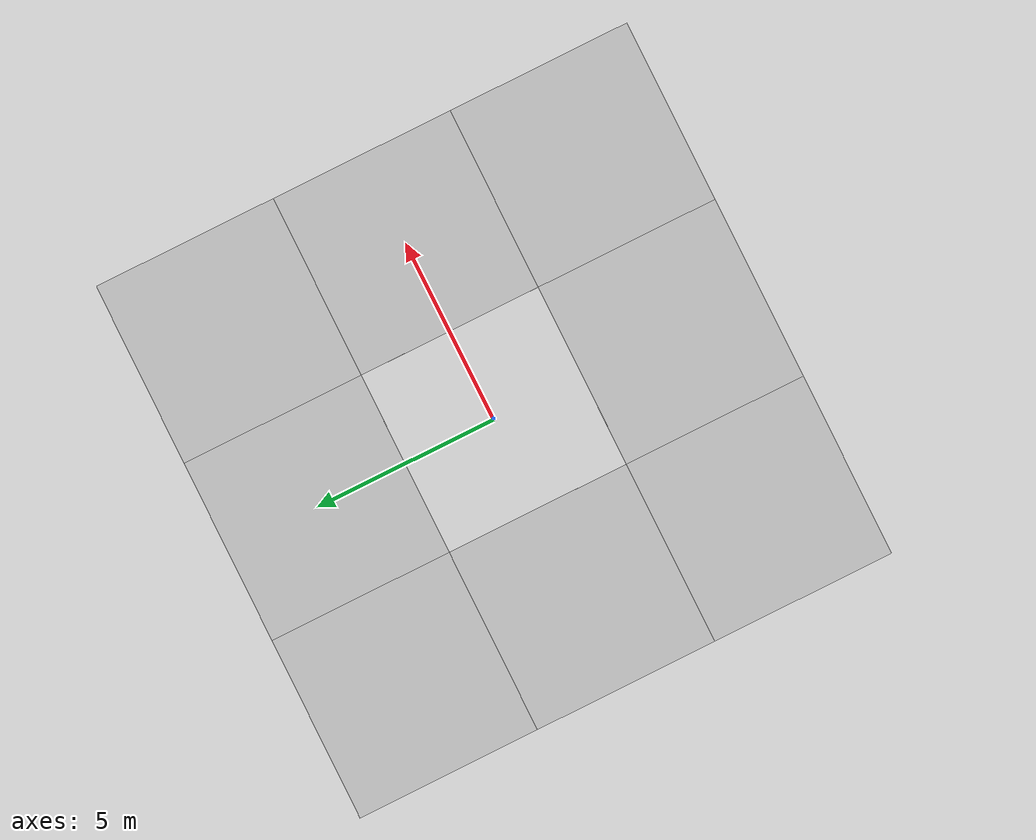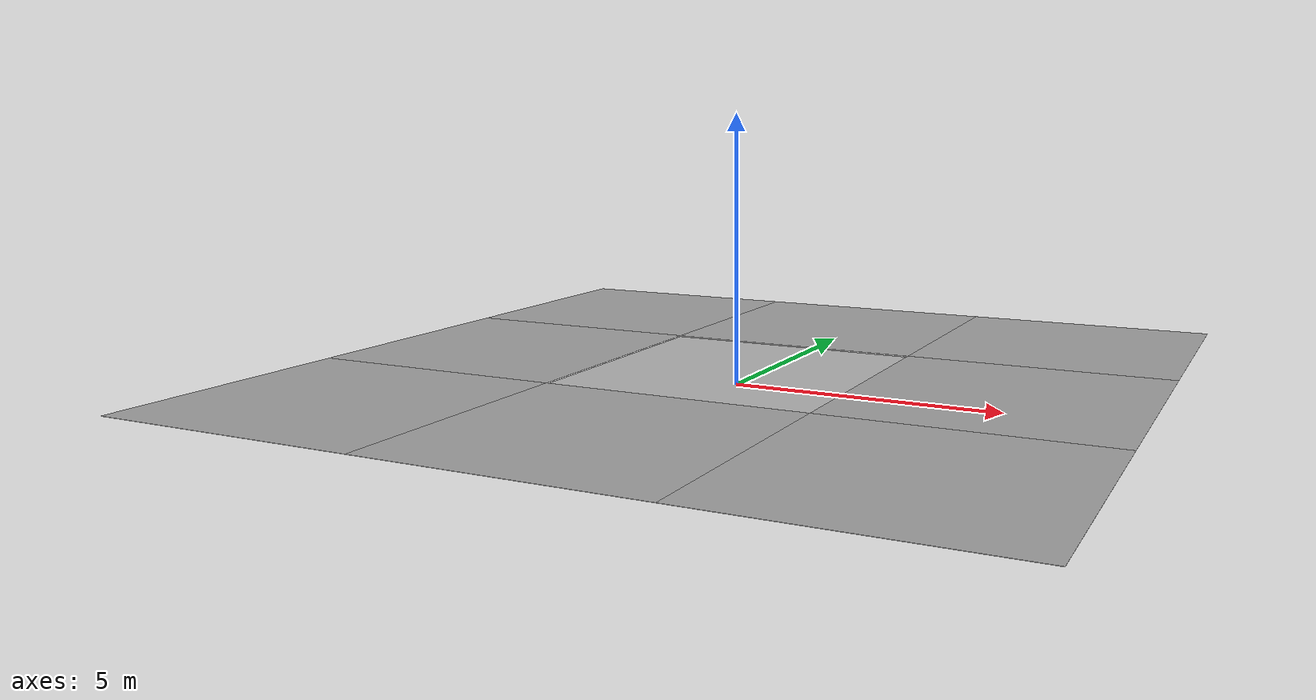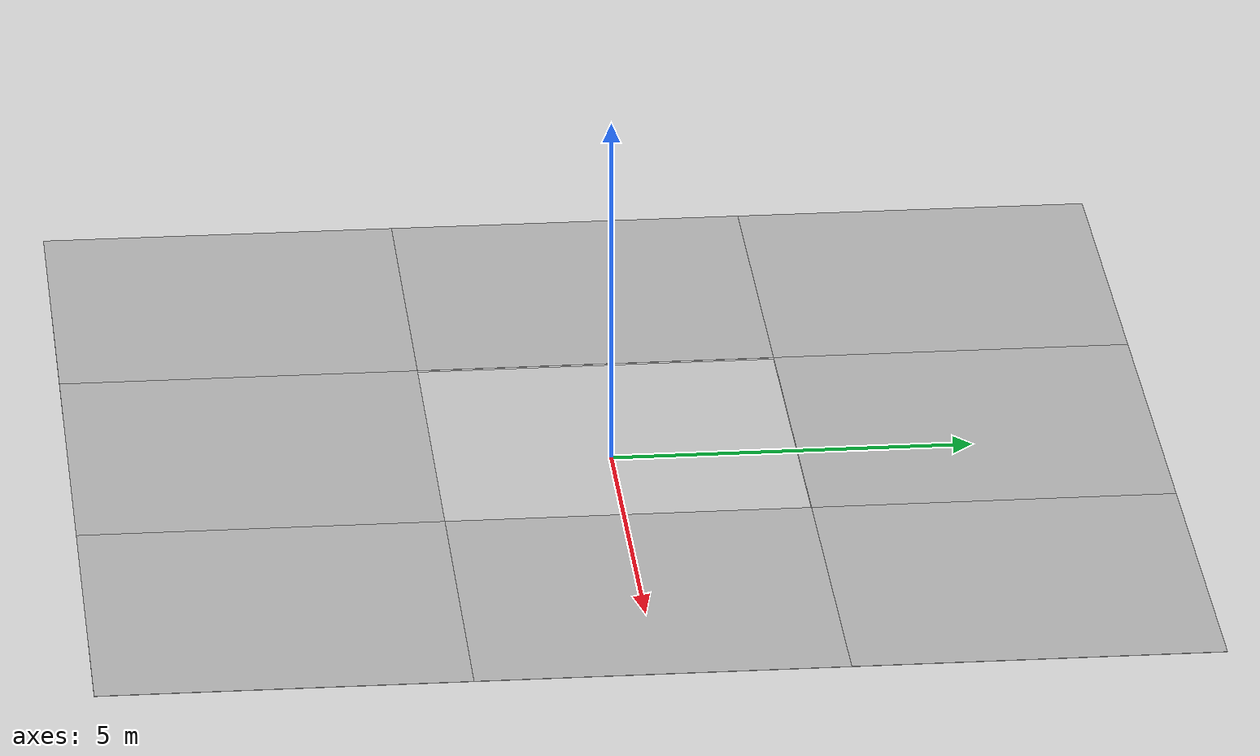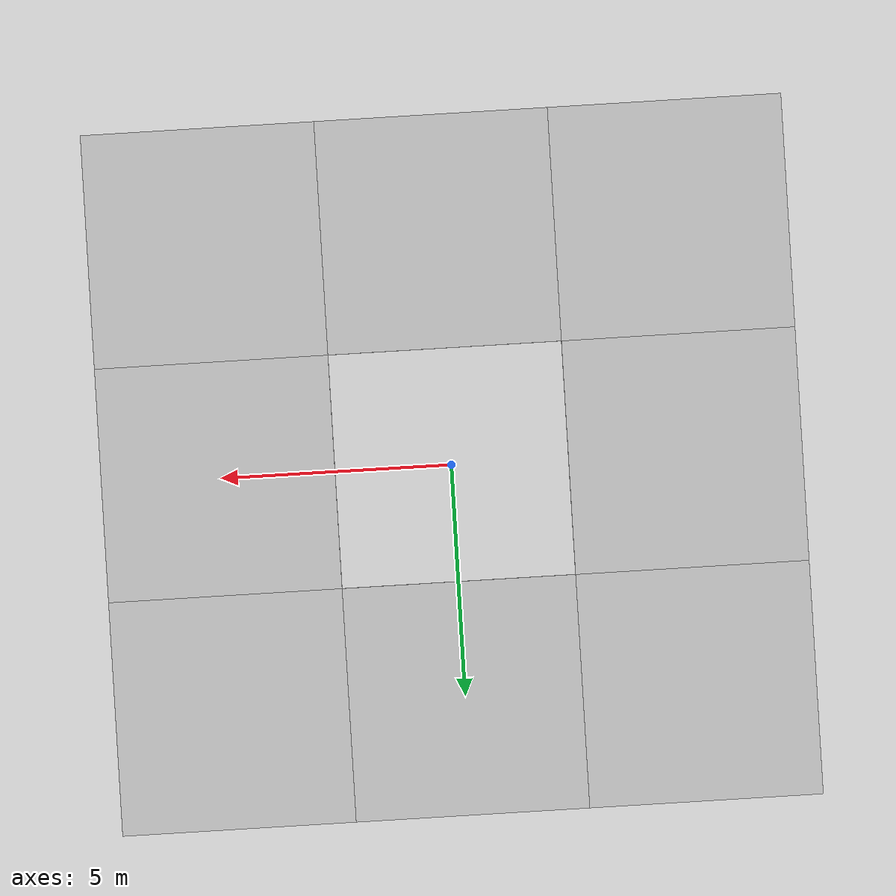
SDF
<?xml version="1.0"?>
<sdf version="1.5">
  <model name="plane_catapult">
    <include>
      <uri>model://plane</uri>
      <name>plane</name>
      <pose>0 0 0.30 0 0 0</pose>
    </include>

    <link name="payload_link">
      <pose>0 0 0.20 0 1.57079632679 0</pose>
      <inertial>
        <mass>0.02</mass>
        <inertia>
          <ixx>0.00001</ixx><iyy>0.00001</iyy><izz>0.00001</izz>
        </inertia>
      </inertial>
      <sensor name="down_camera" type="camera">
        <always_on>true</always_on>
        <update_rate>20</update_rate>
        <visualize>false</visualize>
        <camera>
          <horizontal_fov>2.85</horizontal_fov>
          <image><width>640</width><height>480</height><format>R8G8B8</format></image>
          <clip><near>0.20</near><far>500</far></clip>
        </camera>
        <plugin name="down_camera_ros" filename="libgazebo_ros_camera.so">
          <robotNamespace>/uav1</robotNamespace>
          <cameraName>down_camera</cameraName>
          <imageTopicName>image_raw</imageTopicName>
          <cameraInfoTopicName>camera_info</cameraInfoTopicName>
          <frameName>uav1/down_camera_optical_frame</frameName>
          <updateRate>20</updateRate>
        </plugin>
      </sensor>
      <sensor name="down_lrf" type="ray">
        <always_on>true</always_on>
        <update_rate>20</update_rate>
        <ray>
          <scan>
            <horizontal><samples>1</samples><resolution>1</resolution><min_angle>0</min_angle><max_angle>0</max_angle></horizontal>
            <vertical><samples>1</samples><resolution>1</resolution><min_angle>0</min_angle><max_angle>0</max_angle></vertical>
          </scan>
          <range><min>0.5</min><max>500</max><resolution>0.02</resolution></range>
        </ray>
        <plugin name="down_lrf_ros" filename="libgazebo_ros_range.so">
          <robotNamespace>/uav1</robotNamespace>
          <topicName>gimbal/range</topicName>
          <frameName>uav1/down_lrf_frame</frameName>
          <radiation>infrared</radiation>
          <fov>0.01</fov>
          <gaussianNoise>0.02</gaussianNoise>
          <updateRate>20</updateRate>
        </plugin>
      </sensor>
    </link>
    <joint name="payload_fixed_joint" type="fixed">
      <parent>plane::base_link</parent>
      <child>payload_link</child>
    </joint>

    <plugin name="catapult_plugin"
            filename="libgazebo_catapult_plugin.so">
      <robotNamespace></robotNamespace>
      <link_name>payload_link</link_name>
      <!-- PX4's CommandMotorSpeed array is zero based; rotor4 is index 4. -->
      <motorNumber>4</motorNumber>
      <commandSubTopic>/gazebo/command/motor_speed</commandSubTopic>
      <!-- Approximately 20 N*s for the stock 1.5 kg plane: reaches flying
           speed without the previous 150 N*s impulse overspeeding the model. -->
      <force>25.0</force>
      <duration>0.80</duration>
      <hold_before_launch>true</hold_before_launch>
      <direction_x>1.0</direction_x>
      <direction_y>0.0</direction_y>
      <direction_z>0.35</direction_z>
    </plugin>
  </model>
</sdf>

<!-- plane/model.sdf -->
<sdf version='1.4'>
    <model name='plane'>
        <static>true</static>
        <link name='link'>

            <collision name='collision'>
                <geometry>
                    <plane>
                        <normal>0 0 1</normal>
                        <size>15 15</size>
                    </plane>
                </geometry>
                <surface>
                    <friction>
                        <ode>
                            <mu>100</mu>
                            <mu2>50</mu2>
                        </ode>
                    </friction>
                </surface>
            </collision>

            <visual name='visual_0'>
                <pose>0 0 0 0 0 0</pose>
                <cast_shadows>false</cast_shadows>
                <geometry>
                    <plane>
                        <normal>0 0 1</normal>
                        <size>5 5</size>
                    </plane>
                </geometry>
                <material>
                    <script>
                        <uri>model://plane/materials/scripts</uri>
                        <uri>model://plane/materials/textures</uri>
                        <name>vrc/pavement</name>
                    </script>
                </material>
            </visual>

            <visual name='visual_1'>
                <pose>0 5 0 0 0 0</pose>
                <cast_shadows>false</cast_shadows>
                <geometry>
                    <plane>
                        <normal>0 0 1</normal>
                        <size>5 5</size>
                    </plane>
                </geometry>
                <material>
                    <script>
                        <uri>model://plane/materials/scripts</uri>
                        <uri>model://plane/materials/textures</uri>
                        <name>vrc/pavement</name>
                    </script>
                </material>
            </visual>

            <visual name='visual_2'>
                <pose>0 -5 0 0 0 0</pose>
                <cast_shadows>false</cast_shadows>
                <geometry>
                    <plane>
                        <normal>0 0 1</normal>
                        <size>5 5</size>
                    </plane>
                </geometry>
                <material>
                    <script>
                        <uri>model://plane/materials/scripts</uri>
                        <uri>model://plane/materials/textures</uri>
                        <name>vrc/pavement</name>
                    </script>
                </material>
            </visual>

            <visual name='visual_3'>
                <pose>-5 -5 0 0 0 0</pose>
                <cast_shadows>false</cast_shadows>
                <geometry>
                    <plane>
                        <normal>0 0 1</normal>
                        <size>5 5</size>
                    </plane>
                </geometry>
                <material>
                    <script>
                        <uri>model://plane/materials/scripts</uri>
                        <uri>model://plane/materials/textures</uri>
                        <name>vrc/pavement</name>
                    </script>
                </material>
            </visual>

            <visual name='visual_4'>
                <pose>-5 0 0 0 0 0</pose>
                <cast_shadows>false</cast_shadows>
                <geometry>
                    <plane>
                        <normal>0 0 1</normal>
                        <size>5 5</size>
                    </plane>
                </geometry>
                <material>
                    <script>
                        <uri>model://plane/materials/scripts</uri>
                        <uri>model://plane/materials/textures</uri>
                        <name>vrc/pavement</name>
                    </script>
                </material>
            </visual>

            <visual name='visual_5'>
                <pose>-5 5 0 0 0 0</pose>
                <cast_shadows>false</cast_shadows>
                <geometry>
                    <plane>
                        <normal>0 0 1</normal>
                        <size>5 5</size>
                    </plane>
                </geometry>
                <material>
                    <script>
                        <uri>model://plane/materials/scripts</uri>
                        <uri>model://plane/materials/textures</uri>
                        <name>vrc/pavement</name>
                    </script>
                </material>
            </visual>

            <visual name='visual_6'>
                <pose>5 -5 0 0 0 0</pose>
                <cast_shadows>false</cast_shadows>
                <geometry>
                    <plane>
                        <normal>0 0 1</normal>
                        <size>5 5</size>
                    </plane>
                </geometry>
                <material>
                    <script>
                        <uri>model://plane/materials/scripts</uri>
                        <uri>model://plane/materials/textures</uri>
                        <name>vrc/pavement</name>
                    </script>
                </material>
            </visual>

            <visual name='visual_7'>
                <pose>5 0 0 0 0 0</pose>
                <cast_shadows>false</cast_shadows>
                <geometry>
                    <plane>
                        <normal>0 0 1</normal>
                        <size>5 5</size>
                    </plane>
                </geometry>
                <material>
                    <script>
                        <uri>model://plane/materials/scripts</uri>
                        <uri>model://plane/materials/textures</uri>
                        <name>vrc/pavement</name>
                    </script>
                </material>
            </visual>

            <visual name='visual_8'>
                <pose>5 5 0 0 0 0</pose>
                <cast_shadows>false</cast_shadows>
                <geometry>
                    <plane>
                        <normal>0 0 1</normal>
                        <size>5 5</size>
                    </plane>
                </geometry>
                <material>
                    <script>
                        <uri>model://plane/materials/scripts</uri>
                        <uri>model://plane/materials/textures</uri>
                        <name>vrc/pavement</name>
                    </script>
                </material>
            </visual>

        </link>
    </model>
</sdf>
